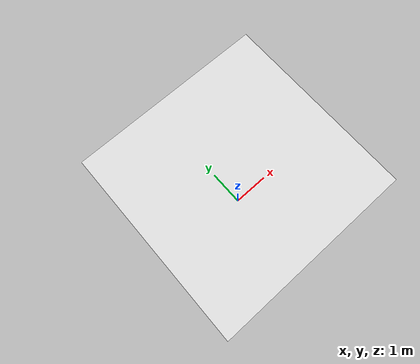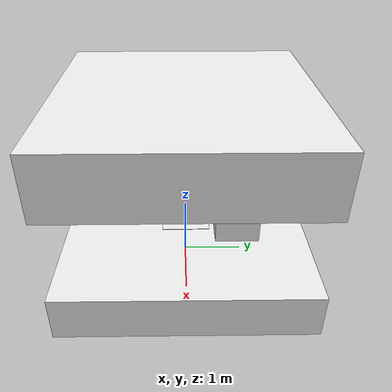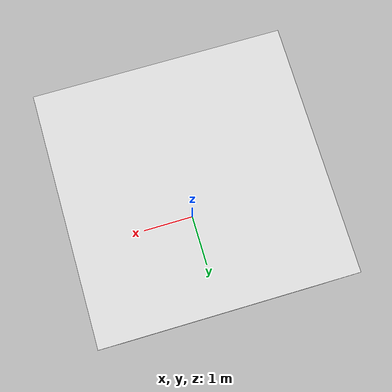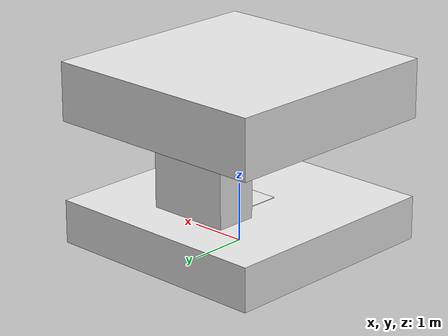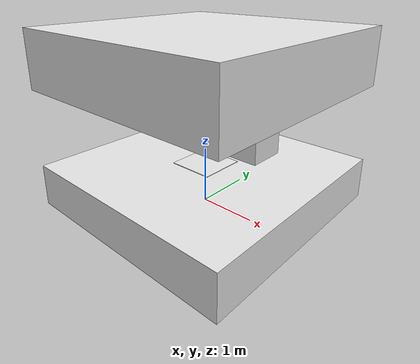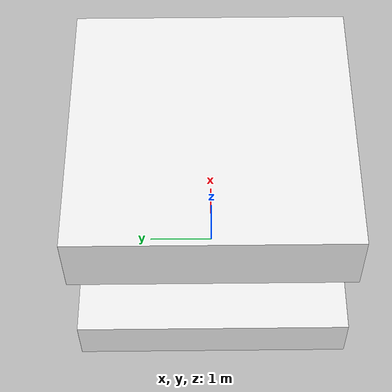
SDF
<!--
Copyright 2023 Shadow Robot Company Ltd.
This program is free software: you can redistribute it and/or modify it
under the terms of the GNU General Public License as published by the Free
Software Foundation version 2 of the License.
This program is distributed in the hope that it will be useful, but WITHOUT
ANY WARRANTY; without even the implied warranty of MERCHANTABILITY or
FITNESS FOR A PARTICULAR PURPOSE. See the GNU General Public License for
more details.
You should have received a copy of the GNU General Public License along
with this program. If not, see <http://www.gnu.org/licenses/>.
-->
<?xml version="1.0" ?>

<sdf version="1.4">
  <world name="default">
    <light type="directional" name="lab_light">
      <pose>-6.14 -4.04 2.5 1.3 0 -0.35</pose>
      <diffuse>.8 .8 .8 1</diffuse>
      <specular>.2 .2 .2 1</specular>
      <attenuation>
        <range>20</range>
        <constant>0.9</constant>
        <linear>0.01</linear>
        <quadratic>0.001</quadratic>
      </attenuation>
      <direction>0 0 -1</direction>
      <cast_shadows>true</cast_shadows>
    </light>
    <include>
      <uri>model://xprize_base</uri>
      <name>xprize_base</name>
      <pose>0 0 0.375 0 0 0</pose>
    </include>
    <include>
      <uri>model://xprize_table</uri>
      <name>xprize_table</name>
      <pose>0 0 0.37 0 0 0</pose>
    </include>
    <include>
      <uri>model://xprize_ceiling</uri>
      <name>xprize_ceiling</name>
      <pose>0 0 2.6 0 0 0</pose>
    </include>
    <include>
      <uri>model://xprize_camera_stand</uri>
      <name>xprize_camera_stand</name>
      <pose>0 0.84 1 0 0 0</pose>
    </include>
    <physics type="ode">
      <gravity>0.000000 0.000000 -9.810000</gravity>
      <ode>
        <solver>
          <type>quick</type>
          <iters>100</iters>
          <precon_iters>0</precon_iters>
          <sor>1.000000</sor>
        </solver>
        <constraints>
          <cfm>0.000000</cfm>
          <erp>0.500000</erp>
          <contact_max_correcting_vel>1000.000000</contact_max_correcting_vel>
          <contact_surface_layer>0.00000</contact_surface_layer>
        </constraints>
      </ode>
      <real_time_factor>1.0</real_time_factor>
      <max_step_size>0.001000</max_step_size>
    </physics>
    <scene>
      <ambient>0.4 0.4 0.4 1</ambient>
      <background>0.7 0.7 1 1</background>
      <shadows>1</shadows>
    </scene>
    <gui fullscreen='0'>
      <camera name='user_camera'>
        <pose frame=''>2.8784 4.2586 1.43117 0 0.083643 -2.30699</pose>
        <view_controller>orbit</view_controller>
      </camera>
    </gui>
  </world>
</sdf>

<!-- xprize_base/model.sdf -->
<sdf version="1.4">
  <model name="xprize_base">
    <static>true</static>
    <link name="link">
      <collision name="collision_xprize_base">
        <geometry>
          <box>
            <size>0.8 0.8 0.75</size>
          </box>
        </geometry>
      </collision>
      <visual name="visual_xprize_base">
        <geometry>
          <box>
            <size>0.8 0.8 0.75</size>
          </box>
        </geometry>
        <material>
          <script>
            <uri>file://media/materials/scripts/gazebo.material</uri>
            <name>Gazebo/White</name>
          </script>
        </material>
      </visual>
    </link>
  </model>
</sdf>

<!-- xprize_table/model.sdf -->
<sdf version="1.4">
  <model name="xprize_table">
    <static>true</static>
    <link name="link">
      <collision name="collision_xprize_table">
        <geometry>
          <box>
            <size>4 4 0.74</size>
          </box>
        </geometry>
      </collision>
      <visual name="visual_xprize_table">
        <geometry>
          <box>
            <size>4 4 0.74</size>
          </box>
        </geometry>
        <material>
          <script>
            <uri>file://media/materials/scripts/gazebo.material</uri>
            <name>Gazebo/White</name>
          </script>
        </material>
      </visual>
    </link>
  </model>
</sdf>

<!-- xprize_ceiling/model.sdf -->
<sdf version="1.4">
  <model name="xprize_ceiling">
    <static>true</static>
    <link name="link">
      <collision name="collision_xprize_ceiling">
        <geometry>
          <box>
            <size>4 4 1</size>
          </box>
        </geometry>
      </collision>
      <visual name="visual_xprize_ceiling">
        <geometry>
          <box>
            <size>4 4 1</size>
          </box>
        </geometry>
        <material>
          <script>
            <uri>file://media/materials/scripts/gazebo.material</uri>
            <name>Gazebo/White</name>
          </script>
        </material>
      </visual>
    </link>
  </model>
</sdf>

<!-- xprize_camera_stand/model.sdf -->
<sdf version="1.4">
  <model name="xprize_camera_stand">
    <static>true</static>
    <link name="link">
      <collision name="collision_xprize_camera_stand">
        <geometry>
          <box>
            <size>1.44 0.72 2</size>
          </box>
        </geometry>
      </collision>
      <visual name="visual_xprize_camera_stand">
        <geometry>
          <box>
            <size>1.44 0.72 2</size>
          </box>
        </geometry>
        <material>
          <script>
            <uri>file://media/materials/scripts/gazebo.material</uri>
            <name>Gazebo/White</name>
          </script>
        </material>
      </visual>
    </link>
  </model>
</sdf>
